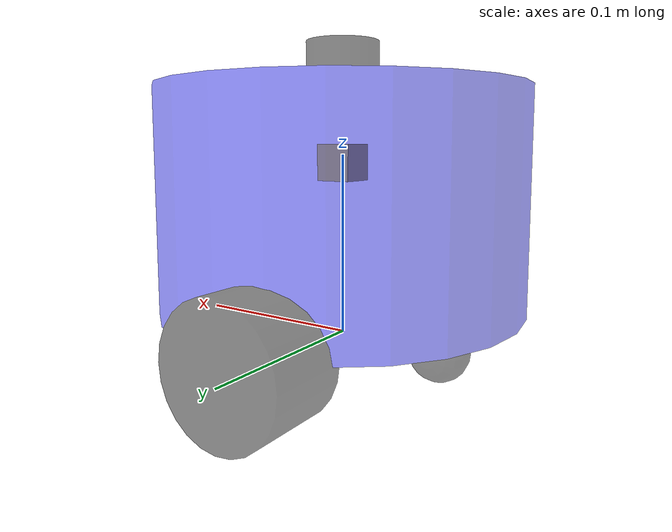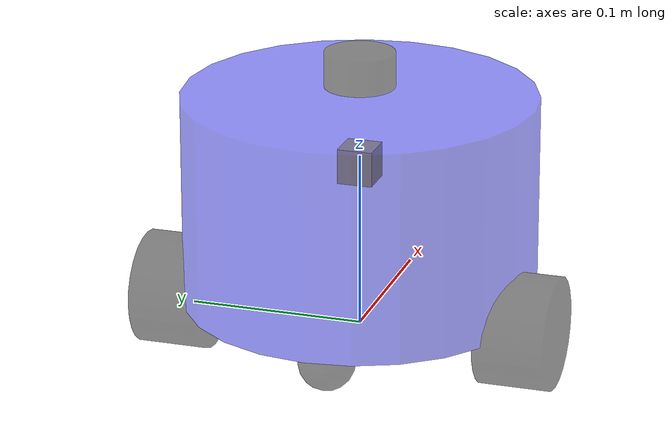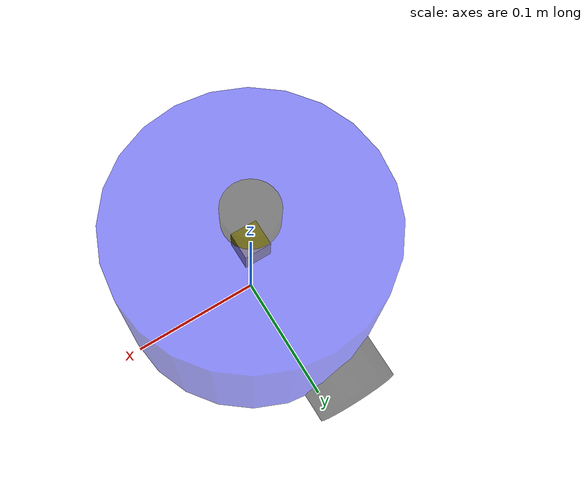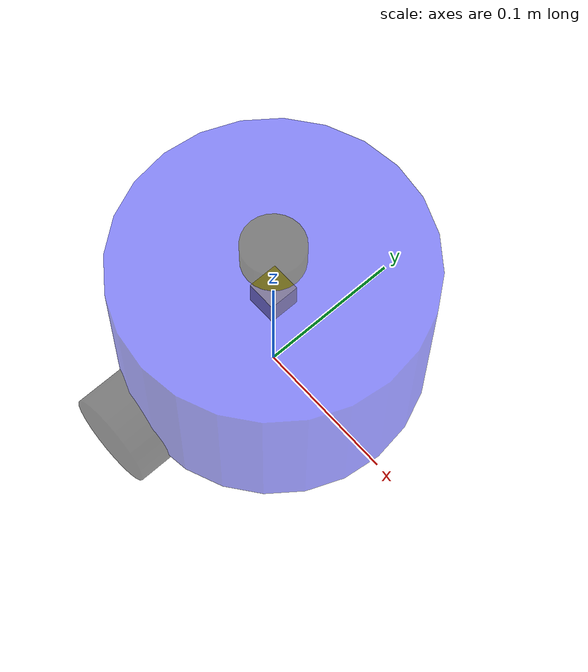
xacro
<?xml version="1.0" encoding="utf-8"?>

<robot xmlns:xacro="http://www.ros.org/wiki/xacro" name="$(arg robot_name)">
  <xacro:arg name="robot_name" default="robot"/>
  <!-- Robot Footprint -->
  <link name="$(arg robot_name)_base_footprint"/>
  <!-- base link -->
  <link name="$(arg robot_name)_base_link">
    <visual>
      <origin xyz="0 0 0.0" rpy="0 0 0"/>
      <geometry>
        <cylinder length="0.12" radius="0.10"/>
      </geometry>
      <material name="blue">
        <color rgba="0.1 0.1 1.0 0.5"/>
      </material>
    </visual>
    <collision>
      <origin xyz="0 0 0.0" rpy="0 0 0"/>
      <geometry>
        <cylinder length="0.12" radius="0.10"/>
      </geometry>
      <material name="blue">
        <color rgba="0.1 0.1 1.0 0.5"/>
      </material>
    </collision>
    <inertial>
      <mass value="0.2"/>
      <inertia ixx="0.0122666" ixy="0" ixz="0" iyy="0.0122666" iyz="0" izz="0.02"/>
    </inertial>
  </link>
  <!-- base joint -->
  <joint name="$(arg robot_name)_base_joint" type="fixed">
    <parent link="$(arg robot_name)_base_footprint"/>
    <child link="$(arg robot_name)_base_link"/>
    <origin xyz="0.0 0.0 0.076" rpy="0 0 0"/>
  </joint>
  <!-- laser link -->
  <link name="$(arg robot_name)_laser_link">
    <visual>
      <origin xyz="0 0 0" rpy="0 0 0"/>
      <geometry>
        <cylinder length="0.02" radius="0.02"/>
      </geometry>
      <material name="black">
        <color rgba="0.0 0.0 0.0 0.5"/>
      </material>
    </visual>
    <collision>
      <origin xyz="0 0 0" rpy="0 0 0"/>
      <geometry>
        <cylinder length="0.02" radius="0.02"/>
      </geometry>
      <material name="black">
        <color rgba="0.0 0.0 0.0 0.5"/>
      </material>
    </collision>
    <inertial>
      <mass value="0.1"/>
      <inertia ixx="0.000190416666667" ixy="0" ixz="0" iyy="0.0001904" iyz="0" izz="0.00036"/>
    </inertial>
  </link>
  <!-- laser joint -->
  <joint name="$(arg robot_name)_laser_joint" type="fixed">
    <parent link="$(arg robot_name)_base_link"/>
    <child link="$(arg robot_name)_laser_link"/>
    <origin xyz="0 0 0.075"/>
  </joint>
  <!-- imu link -->
  <link name="$(arg robot_name)_imu_link">
    <visual>
      <origin xyz="0 0 0.0" rpy="0 0 0"/>
      <geometry>
        <box size="0.02 0.02 0.02"/>
      </geometry>
    </visual>
    <collision>
      <origin xyz="0 0 0.0" rpy="0 0 0"/>
      <geometry>
        <box size="0.02 0.02 0.02"/>
      </geometry>
    </collision>
    <inertial>
      <mass value="0.1"/>
      <inertia ixx="0.000190416666667" ixy="0" ixz="0" iyy="0.0001904" iyz="0" izz="0.00036"/>
    </inertial>
  </link>
  <!-- imu joint -->
  <joint name="$(arg robot_name)_imu_joint" type="fixed">
    <parent link="$(arg robot_name)_base_link"/>
    <child link="$(arg robot_name)_imu_link"/>
    <origin xyz="0 0 0.02"/>
  </joint>
  <!-- left_wheel link -->
  <link name="$(arg robot_name)_left_wheel_link">
    <visual>
      <origin xyz="0 0 0" rpy="1.57079 0 0"/>
      <geometry>
        <cylinder length="0.04" radius="0.032"/>
      </geometry>
      <material name="black">
        <color rgba="0.0 0.0 0.0 0.5"/>
      </material>
    </visual>
    <collision>
      <origin xyz="0 0 0" rpy="1.57079 0 0"/>
      <geometry>
        <cylinder length="0.04" radius="0.032"/>
      </geometry>
      <material name="black">
        <color rgba="0.0 0.0 0.0 0.5"/>
      </material>
    </collision>
    <inertial>
      <mass value="0.2"/>
      <inertia ixx="0.000190416666667" ixy="0" ixz="0" iyy="0.0001904" iyz="0" izz="0.00036"/>
    </inertial>
  </link>
  <!-- left_wheel joint -->
  <joint name="$(arg robot_name)_left_wheel_joint" type="continuous">
    <parent link="$(arg robot_name)_base_link"/>
    <child link="$(arg robot_name)_left_wheel_link"/>
    <origin xyz="-0.02 0.10 -0.06"/>
    <axis xyz="0 1 0"/>
  </joint>
  <!-- right_wheel link -->
  <link name="$(arg robot_name)_right_wheel_link">
    <visual>
      <origin xyz="0 0 0" rpy="1.57079 0 0"/>
      <geometry>
        <cylinder length="0.04" radius="0.032"/>
      </geometry>
      <material name="black">
        <color rgba="0.0 0.0 0.0 0.5"/>
      </material>
    </visual>
    <collision>
      <origin xyz="0 0 0" rpy="1.57079 0 0"/>
      <geometry>
        <cylinder length="0.04" radius="0.032"/>
      </geometry>
      <material name="black">
        <color rgba="0.0 0.0 0.0 0.5"/>
      </material>
    </collision>
    <inertial>
      <mass value="0.2"/>
      <inertia ixx="0.000190416666667" ixy="0" ixz="0" iyy="0.0001904" iyz="0" izz="0.00036"/>
    </inertial>
  </link>
  <!-- right_wheel joint -->
  <joint name="$(arg robot_name)_right_wheel_joint" type="continuous">
    <parent link="$(arg robot_name)_base_link"/>
    <child link="$(arg robot_name)_right_wheel_link"/>
    <origin xyz="-0.02 -0.10 -0.06"/>
    <axis xyz="0 1 0"/>
  </joint>
  <!-- fornt caster link -->
  <link name="$(arg robot_name)_front_caster_link">
    <visual>
      <origin xyz="0 0 0" rpy="1.57079 0 0"/>
      <geometry>
        <sphere radius="0.016"/>
      </geometry>
      <material name="black">
        <color rgba="0.0 0.0 0.0 0.5"/>
      </material>
    </visual>
    <collision>
      <origin xyz="0 0 0" rpy="1.57079 0 0"/>
      <geometry>
        <sphere radius="0.016"/>
      </geometry>
      <material name="black">
        <color rgba="0.0 0.0 0.0 0.5"/>
      </material>
    </collision>
    <inertial>
      <mass value="0.02"/>
      <inertia ixx="0.000190416666667" ixy="0" ixz="0" iyy="0.0001904" iyz="0" izz="0.00036"/>
    </inertial>
  </link>
  <!-- front caster joint -->
  <joint name="$(arg robot_name)_front_caster_joint" type="fixed">
    <parent link="$(arg robot_name)_base_link"/>
    <child link="$(arg robot_name)_front_caster_link"/>
    <origin xyz="0.06 0.0 -0.076"/>
    <axis xyz="0 1 0"/>
  </joint>
  <gazebo reference="$(arg robot_name)_front_caster_link">
    <material>Gazebo/Black</material>
  </gazebo>
  <gazebo reference="$(arg robot_name)_front_caster_link">
    <mu1 value="0.0"/>
    <mu2 value="0.0"/>
    <kp value="1000000.0"/>
    <kd value="10.0"/>
  </gazebo>
  <!-- after caster link -->
  <link name="$(arg robot_name)_after_caster_link">
    <visual>
      <origin xyz="0 0 0" rpy="1.57079 0 0"/>
      <geometry>
        <sphere radius="0.016"/>
      </geometry>
      <material name="black">
        <color rgba="0.0 0.0 0.0 0.5"/>
      </material>
    </visual>
    <collision>
      <origin xyz="0 0 0" rpy="1.57079 0 0"/>
      <geometry>
        <sphere radius="0.016"/>
      </geometry>
      <material name="black">
        <color rgba="0.0 0.0 0.0 0.5"/>
      </material>
    </collision>
    <inertial>
      <mass value="0.02"/>
      <inertia ixx="0.000190416666667" ixy="0" ixz="0" iyy="0.0001904" iyz="0" izz="0.00036"/>
    </inertial>
  </link>
  <!-- after caster joint -->
  <joint name="$(arg robot_name)_after_caster_joint" type="fixed">
    <parent link="$(arg robot_name)_base_link"/>
    <child link="$(arg robot_name)_after_caster_link"/>
    <origin xyz="-0.06 0.0 -0.076"/>
    <axis xyz="0 1 0"/>
  </joint>
  <gazebo reference="$(arg robot_name)_after_caster_link">
    <material>Gazebo/Black</material>
  </gazebo>
  <gazebo reference="$(arg robot_name)_after_caster_link">
    <mu1 value="0.0"/>
    <mu2 value="0.0"/>
    <kp value="1000000.0"/>
    <kd value="10.0"/>
  </gazebo>
  <gazebo>
    <plugin name="$(arg robot_name)_diff_drive" filename="libgazebo_ros_diff_drive.so">
      <ros>
        <namespace>/$(arg robot_name)</namespace>
        <remapping>cmd_vel:=cmd_vel</remapping>
        <remapping>odom:=odom</remapping>
      </ros>
      <update_rate>60</update_rate>
      <!-- wheels -->
      <left_joint>$(arg robot_name)_left_wheel_joint</left_joint>
      <right_joint>$(arg robot_name)_right_wheel_joint</right_joint>
      <!-- kinematics -->
      <wheel_separation>0.2</wheel_separation>
      <wheel_diameter>0.065</wheel_diameter>
      <!-- limits -->
      <max_wheel_torque>20</max_wheel_torque>
      <max_wheel_acceleration>1.0</max_wheel_acceleration>
      <!-- output -->
      <publish_odom>true</publish_odom>
      <publish_odom_tf>false</publish_odom_tf>
      <publish_wheel_tf>false</publish_wheel_tf>
      <odometry_frame>$(arg robot_name)_odom</odometry_frame>
      <robot_base_frame>$(arg robot_name)_base_footprint</robot_base_frame>
    </plugin>
  </gazebo>
  <gazebo reference="$(arg robot_name)_imu_link">
    <sensor name="$(arg robot_name)_imu_sensor" type="imu">
      <plugin filename="libgazebo_ros_imu_sensor.so" name="imu_plugin">
        <ros>
          <namespace>/$(arg robot_name)</namespace>
          <remapping>~/out:=imu</remapping>
        </ros>
        <initial_orientation_as_reference>false</initial_orientation_as_reference>
      </plugin>
      <always_on>true</always_on>
      <update_rate>100</update_rate>
      <visualize>true</visualize>
      <imu>
        <angular_velocity>
          <x>
          </x>
          <y>
          </y>
          <z>
          </z>
        </angular_velocity>
        <linear_acceleration>
          <x>
          </x>
          <y>
          </y>
          <z>
          </z>
        </linear_acceleration>
      </imu>
    </sensor>
  </gazebo>
  <gazebo reference="$(arg robot_name)_laser_link">
    <sensor name="$(arg robot_name)_laser_sensor" type="ray">
      <always_on>true</always_on>
      <visualize>true</visualize>
      <update_rate>50</update_rate>
      <pose>0 0 0.075 0 0 0</pose>
      <ray>
        <scan>
          <horizontal>
            <samples>360</samples>
            <resolution>1.000000</resolution>
            <min_angle>-3.140000</min_angle>
            <max_angle>3.140000</max_angle>
          </horizontal>
        </scan>
        <range>
          <min>0.10000</min>
          <max>3.5</max>
          <resolution>0.015000</resolution>
        </range>
      </ray>
      <plugin name="$(arg robot_name)_laserscan" filename="libgazebo_ros_ray_sensor.so">
        <ros>
          <namespace>/$(arg robot_name)</namespace>
          <remapping>~/out:=scan</remapping>
        </ros>
        <output_type>sensor_msgs/LaserScan</output_type>
        <frame_name>$(arg robot_name)_laser_link</frame_name>
      </plugin>
    </sensor>
  </gazebo>
</robot>
